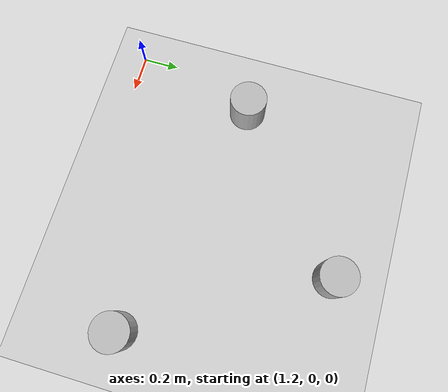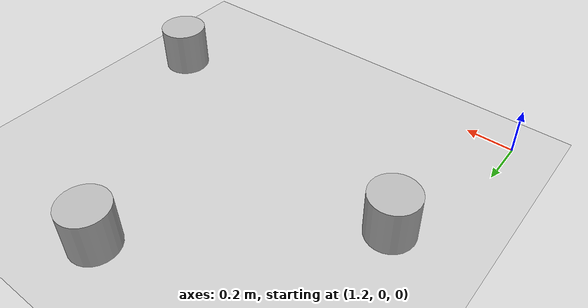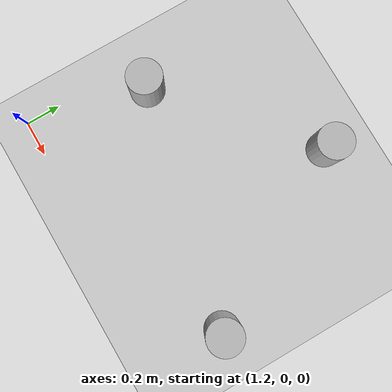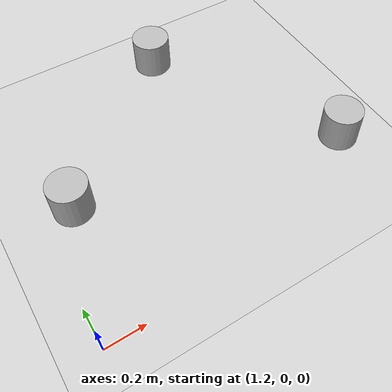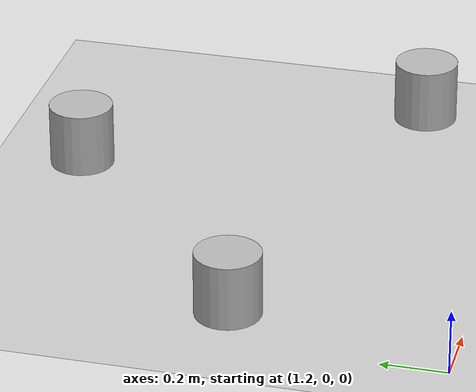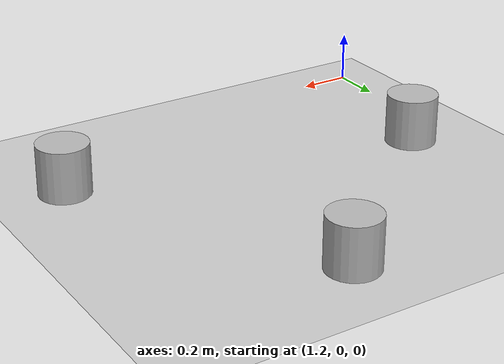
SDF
<?xml version="1.0"?>
<sdf version="1.4">
    <world name="myworld">
        <include>s
            <uri>model://sun</uri>
        </include>
        <include>
            <uri>model://ground_plane</uri>
        </include>
        <model name="cylinder_1">
            <pose>2.72 0.37 0 0 0 0</pose>
            <link name="cyl">
                <pose>0 0 0.1 0 0 0</pose>
                <collision name="collision">
                    <geometry>
                        <cylinder>
                            <radius>0.1</radius>
                            <length>0.2</length>
                        </cylinder>
                    </geometry>
                </collision>
                <visual name="visual">
                    <geometry>
                        <cylinder>
                            <radius>0.1</radius>
                            <length>0.2</length>
                        </cylinder>
                    </geometry>
                </visual>
            </link>
            <static>1</static>
        </model>
        <model name="cylinder_2">
            <pose>1.37 0.68 0 0 0 0</pose>
            <link name="cyl">
                <pose>0 0 0.1 0 0 0</pose>
                <collision name="collision">
                    <geometry>
                        <cylinder>
                            <radius>0.1</radius>
                            <length>0.2</length>
                        </cylinder>
                    </geometry>
                </collision>
                <visual name="visual">
                    <geometry>
                        <cylinder>
                            <radius>0.1</radius>
                            <length>0.2</length>
                        </cylinder>
                    </geometry>
                </visual>
            </link>
            <static>1</static>
        </model>
        <model name="cylinder_3">
            <pose>2.16 1.36 0 0 0 0</pose>
            <link name="cyl">
                <pose>0 0 0.1 0 0 0</pose>
                <collision name="collision">
                    <geometry>
                        <cylinder>
                            <radius>0.1</radius>
                            <length>0.2</length>
                        </cylinder>
                    </geometry>
                </collision>
                <visual name="visual">
                    <geometry>
                        <cylinder>
                            <radius>0.1</radius>
                            <length>0.2</length>
                        </cylinder>
                    </geometry>
                </visual>
            </link>
            <static>1</static>
        </model>
    </world>
</sdf>
